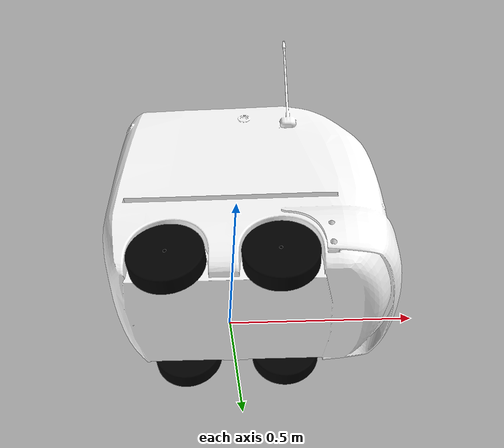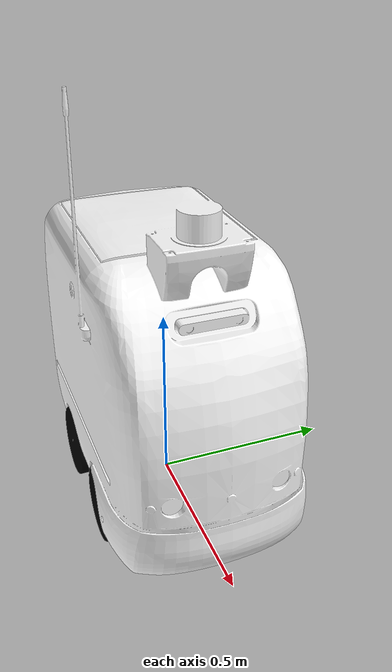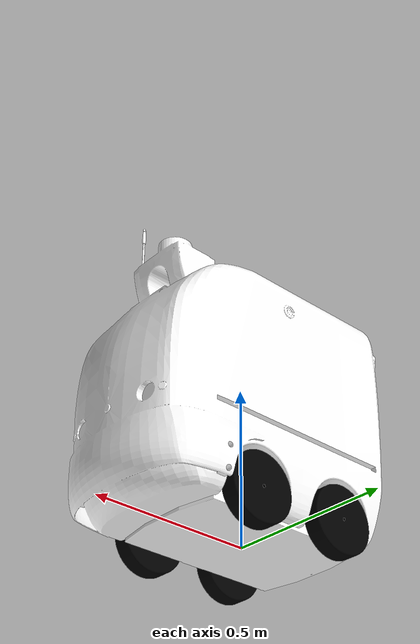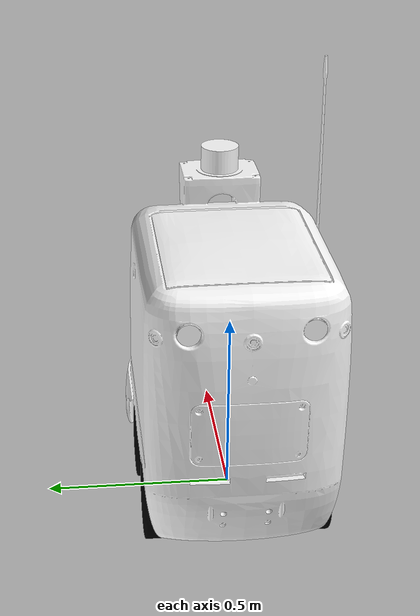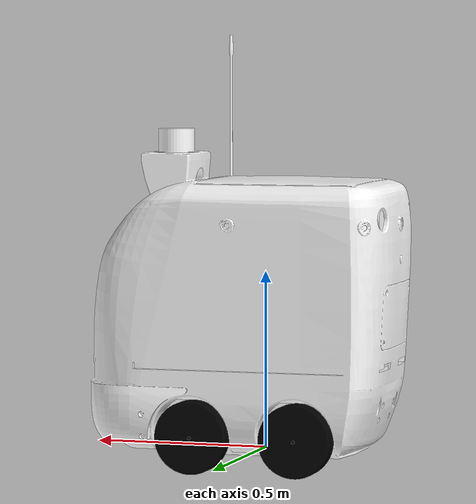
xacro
<?xml version="1.0" encoding="utf-8"?>
<robot
  name="tars4">
  <link
    name="base_link">
    <inertial>
      <origin
        xyz="0.0732745727557489 0.000493510970256962 0.413214837428418"
        rpy="0 0 0" />
      <mass
        value="26.298368938694" />
      <inertia
        ixx="1.2118547835405"
        ixy="0.000301913650025786"
        ixz="0.244146054455403"
        iyy="2.63217845117372"
        iyz="-0.00186525892761391"
        izz="2.69232933962158" />
    </inertial>
    <visual>
      <origin
        xyz="0 0 0"
        rpy="0 0 0" />
      <geometry>
        <mesh
          filename="package://tars4/meshes/base_link.STL" />
      </geometry>
      <material
        name="white">
        <color
          rgba="1 1 1 1" />
      </material>
    </visual>
    <collision>
      <origin
        xyz="0 0 0"
        rpy="0 0 0" />
      <geometry>
        <mesh
          filename="package://tars4/meshes/base_link.STL" />
      </geometry>
    </collision>
  </link>
  <link
    name="frontleftwheel">
    <inertial>
      <origin
        xyz="-2.7756E-17 -0.0275 -8.3267E-17"
        rpy="0 0 0" />
      <mass
        value="1.8042" />
      <inertia
        ixx="0.0051847"
        ixy="6.6094E-20"
        ixz="-1.7149E-19"
        iyy="0.0094659"
        iyz="-1.8286E-18"
        izz="0.0051847" />
    </inertial>
    <visual>
      <origin
        xyz="0 0 0"
        rpy="0 0 0" />
      <geometry>
        <mesh
          filename="package://tars4/meshes/frontleftwheel.STL" />
      </geometry>
      <material
        name="">
        <color
          rgba="0 0 0 1" />
      </material>
    </visual>
    <collision>
      <origin
        xyz="0 0 0"
        rpy="0 0 0" />
      <geometry>
        <mesh
          filename="package://tars4/meshes/frontleftwheel.STL" />
      </geometry>
    </collision>
  </link>
  <gazebo reference="frontleftwheel">
    <material>Gazebo/Grey</material>
  </gazebo>

  <joint
    name="frontleftjoint"
    type="continuous">
    <origin
      xyz="0.14985 0.2475 0.05"
      rpy="0 0 0" />
    <parent
      link="base_link" />
    <child
      link="frontleftwheel" />
    <axis
      xyz="0 1 0" />
    <limit
      effort="1"
      velocity="1.5" />
  </joint>
  <link
    name="backleftwheel">
    <inertial>
      <origin
        xyz="-9.7145E-17 -0.0275 1.3878E-16"
        rpy="0 0 0" />
      <mass
        value="1.8042" />
      <inertia
        ixx="0.0051847"
        ixy="4.9875E-19"
        ixz="5.9653E-19"
        iyy="0.0094659"
        iyz="-3.044E-18"
        izz="0.0051847" />
    </inertial>
    <visual>
      <origin
        xyz="0 0 0"
        rpy="0 0 0" />
      <geometry>
        <mesh
          filename="package://tars4/meshes/backleftwheel.STL" />
      </geometry>
      <material
        name="">
        <color
          rgba="0 0 0 1" />
      </material>
    </visual>
    <collision>
      <origin
        xyz="0 0 0"
        rpy="0 0 0" />
      <geometry>
        <mesh
          filename="package://tars4/meshes/backleftwheel.STL" />
      </geometry>
    </collision>
  </link>

  <gazebo reference="backleftwheel">
    <material>Gazebo/Grey</material>
  </gazebo>
  <joint
    name="backleftjoint"
    type="continuous">
    <origin
      xyz="-0.15015 0.2475 0.05"
      rpy="0 0 0" />
    <parent
      link="base_link" />
    <child
      link="backleftwheel" />
    <axis
      xyz="0 1 0" />
    <limit
      effort="1"
      velocity="1.5" />
  </joint>
  <link
    name="frontrightwheel">
    <inertial>
      <origin
        xyz="0 0.0275 8.3267E-17"
        rpy="0 0 0" />
      <mass
        value="1.8042" />
      <inertia
        ixx="0.0051847"
        ixy="-1.216E-20"
        ixz="-6.3548E-19"
        iyy="0.0094659"
        iyz="3.4218E-18"
        izz="0.0051847" />
    </inertial>
    <visual>
      <origin
        xyz="0 0 0"
        rpy="0 0 0" />
      <geometry>
        <mesh
          filename="package://tars4/meshes/frontrightwheel.STL" />
      </geometry>
      <material
        name="">
        <color
          rgba="0 0 0 1" />
      </material>
    </visual>
    <collision>
      <origin
        xyz="0 0 0"
        rpy="0 0 0" />
      <geometry>
        <mesh
          filename="package://tars4/meshes/frontrightwheel.STL" />
      </geometry>
    </collision>
  </link>
  <gazebo reference="frontrightwheel">
    <material>Gazebo/Grey</material>
  </gazebo>
  <joint
    name="frontrightjoint"
    type="continuous">
    <origin
      xyz="0.14985 -0.2475 0.05"
      rpy="0 0 0" />
    <parent
      link="base_link" />
    <child
      link="frontrightwheel" />
    <axis
      xyz="0 1 0" />
    <limit
      effort="1"
      velocity="1.5" />
  </joint>
  <link
    name="backrightwheel">
    <inertial>
      <origin
        xyz="-9.7145E-17 0.0275 -1.3878E-16"
        rpy="0 0 0" />
      <mass
        value="1.8042" />
      <inertia
        ixx="0.0051847"
        ixy="9.3321E-20"
        ixz="2.4737E-19"
        iyy="0.0094659"
        iyz="3.0839E-18"
        izz="0.0051847" />
    </inertial>
    <visual>
      <origin
        xyz="0 0 0"
        rpy="0 0 0" />
      <geometry>
        <mesh
          filename="package://tars4/meshes/backrightwheel.STL" />
      </geometry>
      <material
        name="">
        <color
          rgba="0 0 0 1" />
      </material>
    </visual>
    <collision>
      <origin
        xyz="0 0 0"
        rpy="0 0 0" />
      <geometry>
        <mesh
          filename="package://tars4/meshes/backrightwheel.STL" />
      </geometry>
    </collision>
  </link>

<gazebo reference="backrightwheel">
    <material>Gazebo/Grey</material>
  </gazebo>

  <joint
    name="backrightjoint"
    type="continuous">
    <origin
      xyz="-0.15015 -0.2475 0.05"
      rpy="0 0 0" />
    <parent
      link="base_link" />
    <child
      link="backrightwheel" />
    <axis
      xyz="0 1 0" />
    <limit
      effort="1"
      velocity="1.5" />
  </joint>
</robot>
